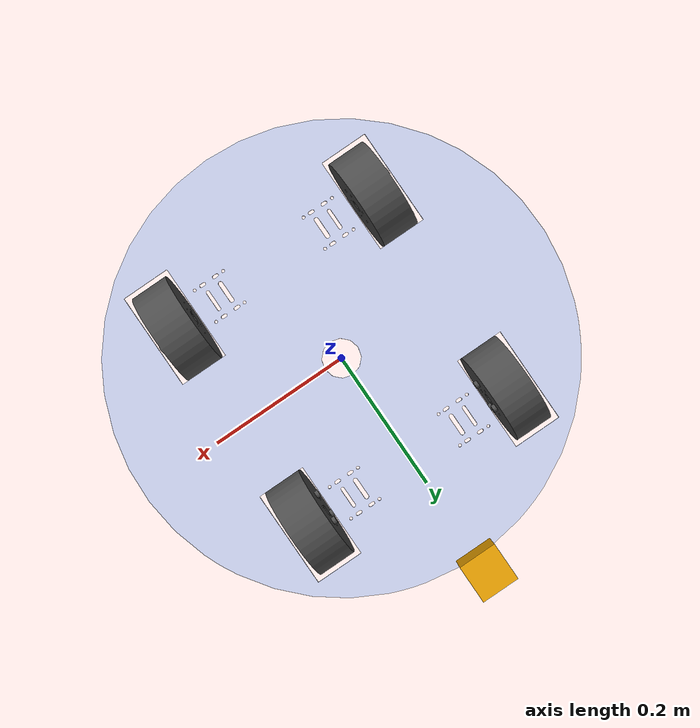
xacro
<?xml version="1.0" encoding="utf-8"?>
<robot
  name="msr_con" xmlns:xacro="http://ros.org/wiki/xacro">

  <xacro:include filename="$(find bot_description)/urdf/msr_con.gazebo.xacro"/>

  <xacro:property name="camera_link" value="0.05" /> <!-- Size of square 'camera' box -->

  <link name="dummy">
  </link>
  <link name="base_link">
    <inertial>
      <origin
        xyz="-1.45421284026292E-18 6.69027950659659E-18 0.095"
        rpy="0 0 0" />
      <mass
        value="0.734911232956305" />
      <inertia
        ixx="0.0165248957618195"
        ixy="-4.33179877395614E-07"
        ixz="-1.49028518302924E-20"
        iyy="0.0167271926720354"
        iyz="2.44102998803428E-20"
        izz="0.0332509860670055" />
    </inertial>
    <visual>
      <origin
        xyz="0 0 0"
        rpy="0 0 0" />
      <geometry>
        <mesh
          filename="package://bot_description/meshes/base_link.STL" />
      </geometry>
      <material
        name="">
        <color
          rgba="0.792156862745098 0.819607843137255 0.933333333333333 1" />
      </material>
    </visual>
    <collision>
      <origin
        xyz="0 0 0"
        rpy="0 0 0" />
      <geometry>
        <mesh
          filename="package://bot_description/meshes/base_link.STL" />
      </geometry>
    </collision>
  </link>
  <link name="front_left">
    <inertial>
      <origin
        xyz="-2.77555756156289E-17 -5.55111512312578E-17 5.25062351154071E-05"
        rpy="0 0 0" />
      <mass
        value="0.628243917892436" />
      <inertia
        ixx="0.000786474602916463"
        ixy="-1.67633321012694E-20"
        ixz="5.86188351982008E-20"
        iyy="0.000786474602916463"
        iyz="3.17299134096198E-18"
        izz="0.00129926747138072" />
    </inertial>
    <visual>
      <origin
        xyz="0 0 0"
        rpy="0 0 0" />
      <geometry>
        <mesh
          filename="package://bot_description/meshes/front_left.STL" />
      </geometry>
      <material
        name="">
        <color
          rgba="0.298039215686275 0.298039215686275 0.298039215686275 1" />
      </material>
    </visual>
    <collision>
      <origin
        xyz="0 0 0"
        rpy="0 0 0" />
      <geometry>
        <mesh
          filename="package://bot_description/meshes/front_left.STL" />
      </geometry>
    </collision>
  </link>
  <link name="front_right">
    <inertial>
      <origin
        xyz="2.77555756156289E-17 -2.77555756156289E-17 5.25062351154348E-05"
        rpy="0 0 0" />
      <mass
        value="0.628243917892436" />
      <inertia
        ixx="0.000786474602916463"
        ixy="1.76260556307686E-20"
        ixz="1.00549063349698E-19"
        iyy="0.000786474602916463"
        iyz="1.66410215433059E-18"
        izz="0.00129926747138072" />
    </inertial>
    <visual>
      <origin
        xyz="0 0 0"
        rpy="0 0 0" />
      <geometry>
        <mesh
          filename="package://bot_description/meshes/front_right.STL" />
      </geometry>
      <material
        name="">
        <color
          rgba="0.298039215686275 0.298039215686275 0.298039215686275 1" />
      </material>
    </visual>
    <collision>
      <origin
        xyz="0 0 0"
        rpy="0 0 0" />
      <geometry>
        <mesh
          filename="package://bot_description/meshes/front_right.STL" />
      </geometry>
    </collision>
  </link>
  <link name="back_left">
    <inertial>
      <origin
        xyz="2.77555756156289E-17 -2.77555756156289E-17 5.25062351154071E-05"
        rpy="0 0 0" />
      <mass
        value="0.628243917892436" />
      <inertia
        ixx="0.000786474602916463"
        ixy="1.66599345246999E-20"
        ixz="-3.17301516583673E-18"
        iyy="0.000786474602916463"
        iyz="5.86254458607071E-20"
        izz="0.00129926747138072" />
    </inertial>
    <visual>
      <origin
        xyz="0 0 0"
        rpy="0 0 0" />
      <geometry>
        <mesh
          filename="package://bot_description/meshes/back_left.STL" />
      </geometry>
      <material
        name="">
        <color
          rgba="0.298039215686275 0.298039215686275 0.298039215686275 1" />
      </material>
    </visual>
    <collision>
      <origin
        xyz="0 0 0"
        rpy="0 0 0" />
      <geometry>
        <mesh
          filename="package://bot_description/meshes/back_left.STL" />
      </geometry>
    </collision>
  </link>
  <link name="back_right">
    <inertial>
      <origin
        xyz="-2.77555756156289E-17 5.55111512312578E-17 -5.25062351154348E-05"
        rpy="0 0 0" />
      <mass
        value="0.628243917892436" />
      <inertia
        ixx="0.000786474602916463"
        ixy="1.66808862800447E-20"
        ixz="-5.8599200809644E-20"
        iyy="0.000786474602916463"
        iyz="-1.37011113349761E-19"
        izz="0.00129926747138072" />
    </inertial>
    <visual>
      <origin
        xyz="0 0 0"
        rpy="0 0 0" />
      <geometry>
        <mesh
          filename="package://bot_description/meshes/back_right.STL" />
      </geometry>
      <material
        name="">
        <color
          rgba="0.298039215686275 0.298039215686275 0.298039215686275 1" />
      </material>
    </visual>
    <collision>
      <origin
        xyz="0 0 0"
        rpy="0 0 0" />
      <geometry>
        <mesh
          filename="package://bot_description/meshes/back_right.STL" />
      </geometry>
    </collision>
  </link>
  <link name="my_lidar">
  </link>
  <link name="my_imu">
  </link>
  <link name="my_camera">
    <collision>
      <origin xyz="0 0 0" rpy="0 0 0"/>
      <geometry>
    <box size="${camera_link+0.02} ${camera_link} ${camera_link-0.01}"/>
      </geometry>
    </collision>

    <visual>
      <origin xyz="0 0 0" rpy="0 0 0"/>
      <geometry>
    <box size="${camera_link} ${camera_link} ${camera_link}"/>
      </geometry>
    </visual>

    <inertial>
      <mass value="1e-5" />
      <origin xyz="0 0 0" rpy="0 0 0"/>
      <inertia ixx="1e-6" ixy="0" ixz="0" iyy="1e-6" iyz="0" izz="1e-6" />
    </inertial>
  </link>

  <joint name="dummy_joint" type="fixed">
    <parent link="dummy"/>
    <child link="base_link"/>
  </joint>
  <joint name="front_left_joint"
    type="continuous">
    <origin
      xyz="-0.151 0.14911 0.0635"
      rpy="3.1416 -1.5708 0" />
    <parent
      link="base_link" />
    <child
      link="front_left" />
    <axis
      xyz="0 0 -1" />
    <limit
      lower="0"
      upper="0"
      effort="50"
      velocity="10" />
  </joint>
  <joint name="front_right_joint"
    type="continuous">
    <origin
      xyz="0.151 0.14911 0.0635"
      rpy="0 -1.5708 0" />
    <parent
      link="base_link" />
    <child
      link="front_right" />
    <axis
      xyz="0 0 1" />
    <limit
      lower="0"
      upper="0"
      effort="50"
      velocity="10" />
  </joint>
  <joint name="back_left_joint"
    type="continuous">
    <origin
      xyz="-0.151 -0.14911 0.0635"
      rpy="1.5708 0 -1.5708" />
    <parent
      link="base_link" />
    <child
      link="back_left" />
    <axis
      xyz="0 0 -1" />
    <limit
      lower="0"
      upper="0"
      effort="50"
      velocity="10" />
  </joint>
  <joint name="back_right_joint"
    type="continuous">
    <origin
      xyz="0.151 -0.149113167332488 0.0635000000000007"
      rpy="0 -1.5707963267949 0" />
    <parent
      link="base_link" />
    <child
      link="back_right" />
    <axis
      xyz="0 0 1" />
    <limit
      lower="0"
      upper="0"
      effort="50"
      velocity="10" />
  </joint>
  <joint name="lidar_joint" type="fixed">
    <parent link="base_link"/>
    <child link="my_lidar"/>
    <origin xyz="0 0 0.2" rpy="0 0 0"/>
  </joint>
  <joint name="imu_joint" type="fixed">
    <parent link="base_link"/>
    <child link="my_imu"/>
    <origin xyz="0 0 0" rpy="0 0 0"/>
  </joint>
  <joint name="camera_joint" type="fixed">
    <parent link="base_link"/>
    <child link="my_camera"/>
    <origin xyz="0 0.31 0.15" rpy="0 0 1.5707"/>
  </joint>

</robot>
